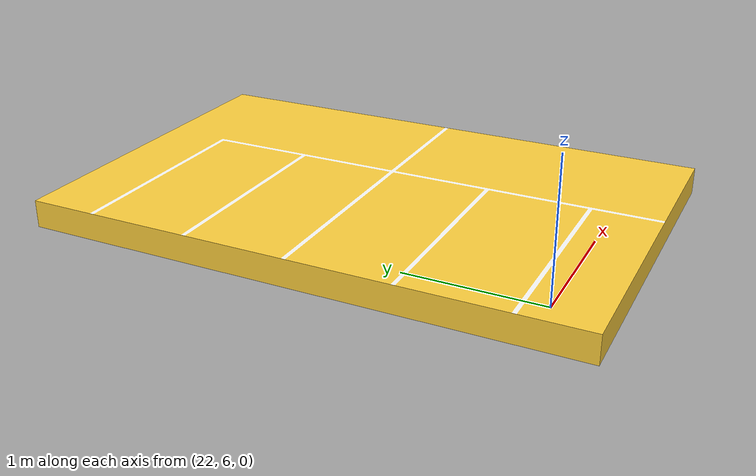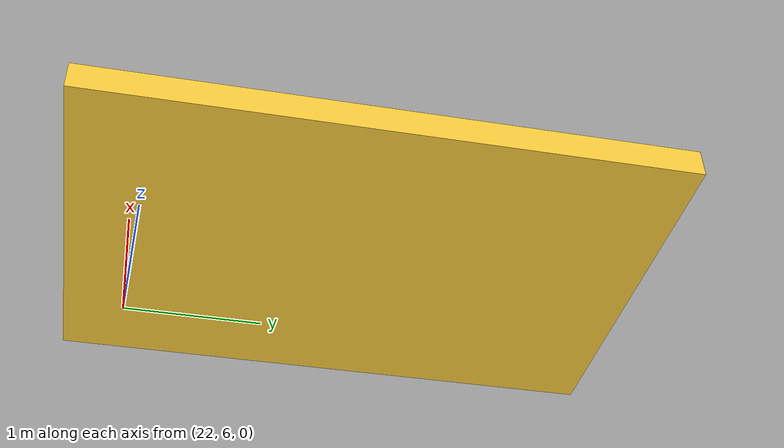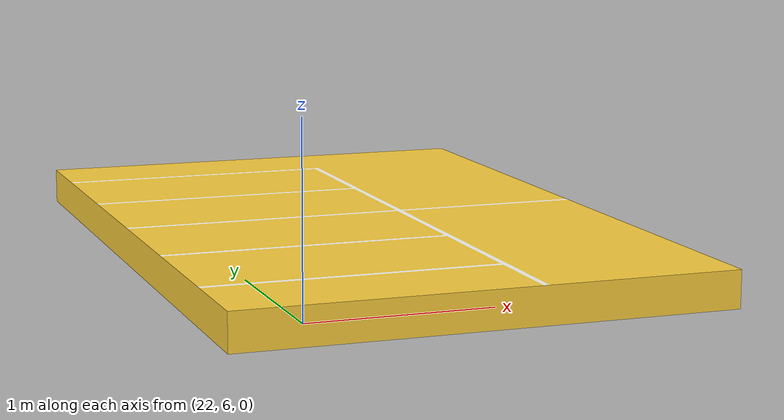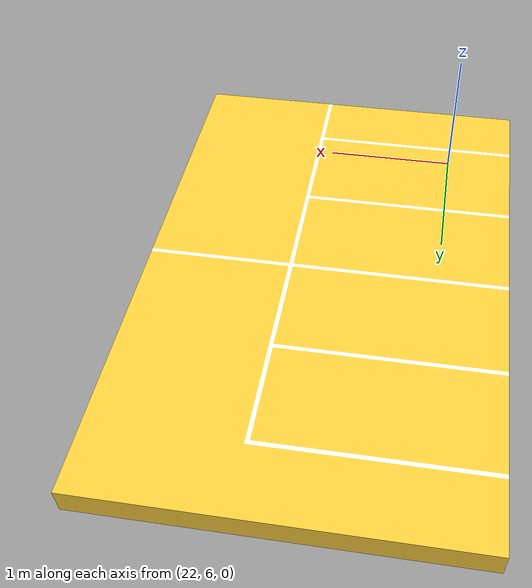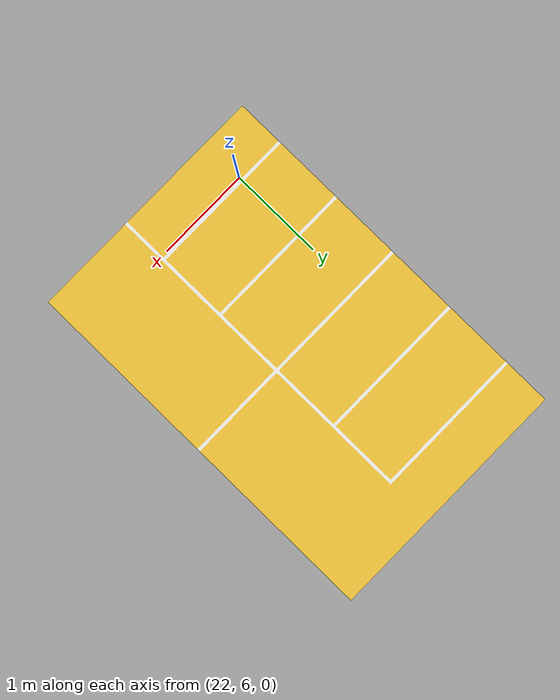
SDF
<?xml version="1.0"?>
<sdf version="1.6">
  <model name="abu2024_bf301">
      <pose>0 0 0  0 0 0</pose>
      <static>true</static>
      <link name="body">
        <visual name="visual">
          <geometry>
            <mesh><uri>model://abu2024_bf301/meshes/bf301.dae</uri></mesh>
          </geometry>
        </visual>
        <collision name="collision">
          <geometry>
            <mesh><uri>model://abu2024_bf301/meshes/bf301.dae</uri></mesh>
          </geometry>
        </collision>
      </link>
 </model>
</sdf>
